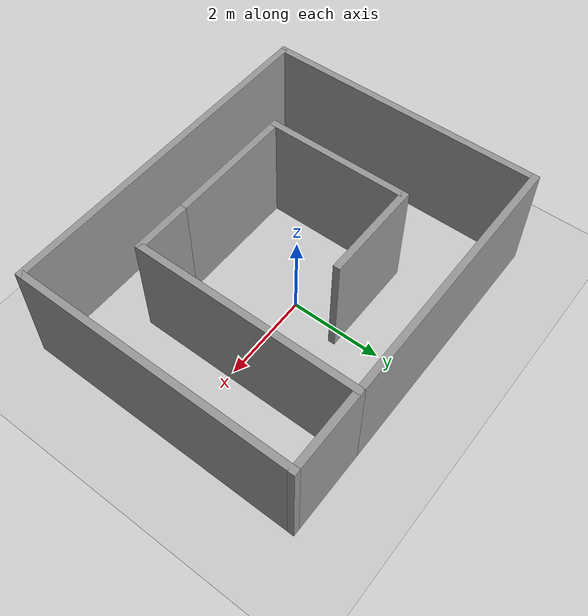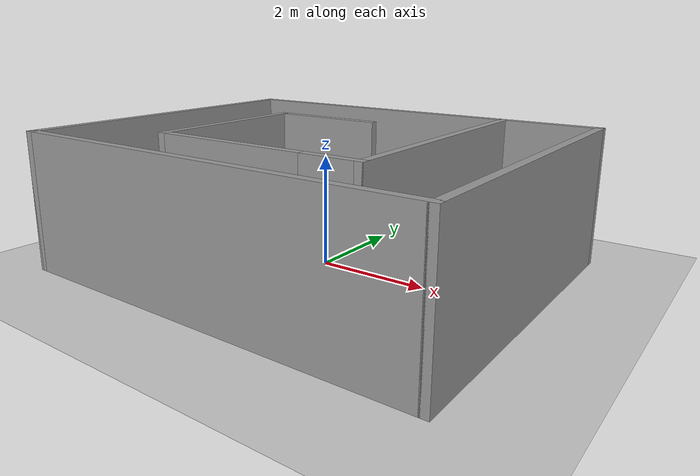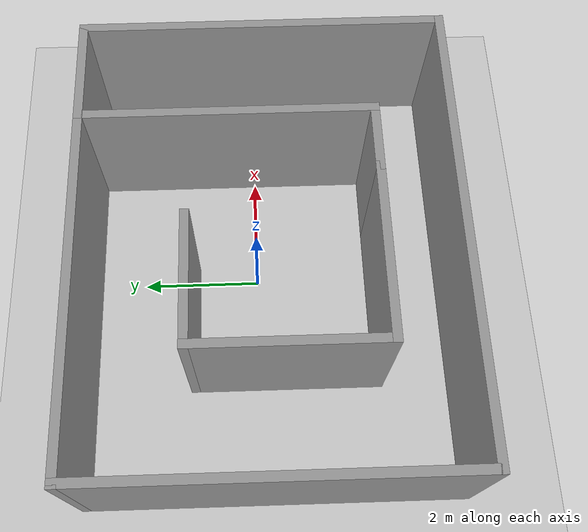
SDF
<sdf version='1.6'>
  <world name='default'>
    <light name='sun' type='directional'>
      <cast_shadows>1</cast_shadows>
      <pose frame=''>0 0 10 0 -0 0</pose>
      <diffuse>0.8 0.8 0.8 1</diffuse>
      <specular>0.1 0.1 0.1 1</specular>
      <attenuation>
        <range>1000</range>
        <constant>0.9</constant>
        <linear>0.01</linear>
        <quadratic>0.001</quadratic>
      </attenuation>
      <direction>-0.5 0.5 -1</direction>
    </light>
    <model name='ground_plane'>
      <static>1</static>
      <link name='link'>
        <collision name='collision'>
          <geometry>
            <plane>
              <normal>0 0 1</normal>
              <size>100 100</size>
            </plane>
          </geometry>
          <surface>
            <friction>
              <ode>
                <mu>100</mu>
                <mu2>50</mu2>
              </ode>
              <torsional>
                <ode/>
              </torsional>
            </friction>
            <contact>
              <ode/>
            </contact>
            <bounce/>
          </surface>
          <max_contacts>10</max_contacts>
        </collision>
        <visual name='visual'>
          <cast_shadows>0</cast_shadows>
          <geometry>
            <plane>
              <normal>0 0 1</normal>
              <size>100 100</size>
            </plane>
          </geometry>
          <material>
            <script>
              <uri>file://media/materials/scripts/gazebo.material</uri>
              <name>Gazebo/Grey</name>
            </script>
          </material>
        </visual>
        <self_collide>0</self_collide>
        <kinematic>0</kinematic>
        <gravity>1</gravity>
      </link>
    </model>
    <gravity>0 0 -9.8</gravity>
    <magnetic_field>6e-06 2.3e-05 -4.2e-05</magnetic_field>
    <atmosphere type='adiabatic'/>
    <physics name='default_physics' default='0' type='ode'>
      <max_step_size>0.001</max_step_size>
      <real_time_factor>1</real_time_factor>
      <real_time_update_rate>1000</real_time_update_rate>
    </physics>
    <scene>
      <ambient>0.4 0.4 0.4 1</ambient>
      <background>0.7 0.7 0.7 1</background>
      <shadows>1</shadows>
    </scene>
    <spherical_coordinates>
      <surface_model>EARTH_WGS84</surface_model>
      <latitude_deg>0</latitude_deg>
      <longitude_deg>0</longitude_deg>
      <elevation>0</elevation>
      <heading_deg>0</heading_deg>
    </spherical_coordinates>
  <model name='my'>
    <pose frame=''>0.015422 -0.197703 0 0 -0 0</pose>
    <link name='Wall_15'>
      <collision name='Wall_15_Collision'>
        <geometry>
          <box>
            <size>2.25 0.15 2.5</size>
          </box>
        </geometry>
        <pose frame=''>0 0 1.25 0 -0 0</pose>
      </collision>
      <visual name='Wall_15_Visual'>
        <pose frame=''>0 0 1.25 0 -0 0</pose>
        <geometry>
          <box>
            <size>2.25 0.15 2.5</size>
          </box>
        </geometry>
        <material>
          <script>
            <uri>file://media/materials/scripts/gazebo.material</uri>
            <name>Gazebo/Grey</name>
          </script>
          <ambient>1 1 1 1</ambient>
        </material>
      </visual>
      <pose frame=''>-0.85 1.3 0 0 -0 3.14159</pose>
    </link>
    <link name='Wall_16'>
      <collision name='Wall_16_Collision'>
        <geometry>
          <box>
            <size>3.25 0.15 2.5</size>
          </box>
        </geometry>
        <pose frame=''>0 0 1.25 0 -0 0</pose>
      </collision>
      <visual name='Wall_16_Visual'>
        <pose frame=''>0 0 1.25 0 -0 0</pose>
        <geometry>
          <box>
            <size>3.25 0.15 2.5</size>
          </box>
        </geometry>
        <material>
          <script>
            <uri>file://media/materials/scripts/gazebo.material</uri>
            <name>Gazebo/Grey</name>
          </script>
          <ambient>1 1 1 1</ambient>
        </material>
      </visual>
      <pose frame=''>-1.9 -0.25 0 0 0 -1.5708</pose>
    </link>
    <link name='Wall_17'>
      <collision name='Wall_17_Collision'>
        <geometry>
          <box>
            <size>3 0.15 2.5</size>
          </box>
        </geometry>
        <pose frame=''>0 0 1.25 0 -0 0</pose>
      </collision>
      <visual name='Wall_17_Visual'>
        <pose frame=''>0 0 1.25 0 -0 0</pose>
        <geometry>
          <box>
            <size>3 0.15 2.5</size>
          </box>
        </geometry>
        <material>
          <script>
            <uri>file://media/materials/scripts/gazebo.material</uri>
            <name>Gazebo/Grey</name>
          </script>
          <ambient>1 1 1 1</ambient>
        </material>
      </visual>
      <pose frame=''>-0.475 -1.8 0 0 -0 0</pose>
    </link>
    <link name='Wall_18'>
      <collision name='Wall_18_Collision'>
        <geometry>
          <box>
            <size>1.25 0.15 2.5</size>
          </box>
        </geometry>
        <pose frame=''>0 0 1.25 0 -0 0</pose>
      </collision>
      <visual name='Wall_18_Visual'>
        <pose frame=''>0 0 1.25 0 -0 0</pose>
        <geometry>
          <box>
            <size>1.25 0.15 2.5</size>
          </box>
        </geometry>
        <material>
          <script>
            <uri>file://media/materials/scripts/gazebo.material</uri>
            <name>Gazebo/Grey</name>
          </script>
          <ambient>1 1 1 1</ambient>
        </material>
      </visual>
      <pose frame=''>1.5 -1.8 0 0 -0 0</pose>
    </link>
    <link name='Wall_19'>
      <collision name='Wall_19_Collision'>
        <geometry>
          <box>
            <size>5 0.15 2.5</size>
          </box>
        </geometry>
        <pose frame=''>0 0 1.25 0 -0 0</pose>
      </collision>
      <visual name='Wall_19_Visual'>
        <pose frame=''>0 0 1.25 0 -0 0</pose>
        <geometry>
          <box>
            <size>5 0.15 2.5</size>
          </box>
        </geometry>
        <material>
          <script>
            <uri>file://media/materials/scripts/gazebo.material</uri>
            <name>Gazebo/Grey</name>
          </script>
          <ambient>1 1 1 1</ambient>
        </material>
      </visual>
      <pose frame=''>2.05 0.625 0 0 -0 1.5708</pose>
    </link>
    <link name='Wall_20'>
      <collision name='Wall_20_Collision'>
        <geometry>
          <box>
            <size>6 0.15 2.5</size>
          </box>
        </geometry>
        <pose frame=''>0 0 1.25 0 -0 0</pose>
      </collision>
      <visual name='Wall_20_Visual'>
        <pose frame=''>0 0 1.25 0 -0 0</pose>
        <geometry>
          <box>
            <size>6 0.15 2.5</size>
          </box>
        </geometry>
        <material>
          <script>
            <uri>file://media/materials/scripts/gazebo.material</uri>
            <name>Gazebo/Grey</name>
          </script>
          <ambient>1 1 1 1</ambient>
        </material>
      </visual>
      <pose frame=''>-0.875 3.05 0 0 -0 3.14159</pose>
    </link>
    <link name='Wall_21'>
      <collision name='Wall_21_Collision'>
        <geometry>
          <box>
            <size>6.25 0.15 2.5</size>
          </box>
        </geometry>
        <pose frame=''>0 0 1.25 0 -0 0</pose>
      </collision>
      <visual name='Wall_21_Visual'>
        <pose frame=''>0 0 1.25 0 -0 0</pose>
        <geometry>
          <box>
            <size>6.25 0.15 2.5</size>
          </box>
        </geometry>
        <material>
          <script>
            <uri>file://media/materials/scripts/gazebo.material</uri>
            <name>Gazebo/Grey</name>
          </script>
          <ambient>1 1 1 1</ambient>
        </material>
      </visual>
      <pose frame=''>-3.8 0 0 0 0 -1.5708</pose>
    </link>
    <link name='Wall_22'>
      <collision name='Wall_22_Collision'>
        <geometry>
          <box>
            <size>7.75 0.15 2.5</size>
          </box>
        </geometry>
        <pose frame=''>0 0 1.25 0 -0 0</pose>
      </collision>
      <visual name='Wall_22_Visual'>
        <pose frame=''>0 0 1.25 0 -0 0</pose>
        <geometry>
          <box>
            <size>7.75 0.15 2.5</size>
          </box>
        </geometry>
        <material>
          <script>
            <uri>file://media/materials/scripts/gazebo.material</uri>
            <name>Gazebo/Grey</name>
          </script>
          <ambient>1 1 1 1</ambient>
        </material>
      </visual>
      <pose frame=''>0 -3.05 0 0 -0 0</pose>
    </link>
    <link name='Wall_23'>
      <collision name='Wall_23_Collision'>
        <geometry>
          <box>
            <size>6.25 0.15 2.5</size>
          </box>
        </geometry>
        <pose frame=''>0 0 1.25 0 -0 0</pose>
      </collision>
      <visual name='Wall_23_Visual'>
        <pose frame=''>0 0 1.25 0 -0 0</pose>
        <geometry>
          <box>
            <size>6.25 0.15 2.5</size>
          </box>
        </geometry>
        <material>
          <script>
            <uri>file://media/materials/scripts/gazebo.material</uri>
            <name>Gazebo/Grey</name>
          </script>
          <ambient>1 1 1 1</ambient>
        </material>
      </visual>
      <pose frame=''>3.8 0 0 0 -0 1.5708</pose>
    </link>
    <link name='Wall_24'>
      <collision name='Wall_24_Collision'>
        <geometry>
          <box>
            <size>1.9 0.15 2.5</size>
          </box>
        </geometry>
        <pose frame=''>0 0 1.25 0 -0 0</pose>
      </collision>
      <visual name='Wall_24_Visual'>
        <pose frame=''>0 0 1.25 0 -0 0</pose>
        <geometry>
          <box>
            <size>1.9 0.15 2.5</size>
          </box>
        </geometry>
        <material>
          <script>
            <uri>file://media/materials/scripts/gazebo.material</uri>
            <name>Gazebo/Grey</name>
          </script>
          <ambient>1 1 1 1</ambient>
        </material>
      </visual>
      <pose frame=''>2.925 3.05 0 0 -0 3.14159</pose>
    </link>
    <static>1</static>
  </model>
    <gui fullscreen='0'>
      <camera name='user_camera'>
        <pose frame=''>16.2109 1.92646 50.3068 0 1.16364 -3.039</pose>
        <view_controller>orbit</view_controller>
        <projection_type>perspective</projection_type>
      </camera>
    </gui>
  </world>
</sdf>
